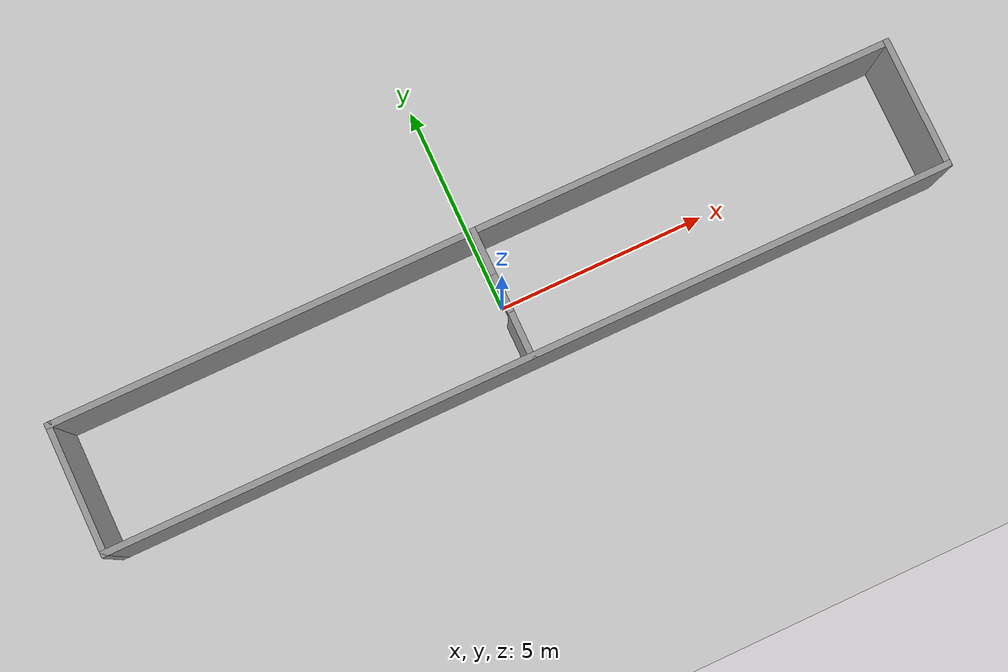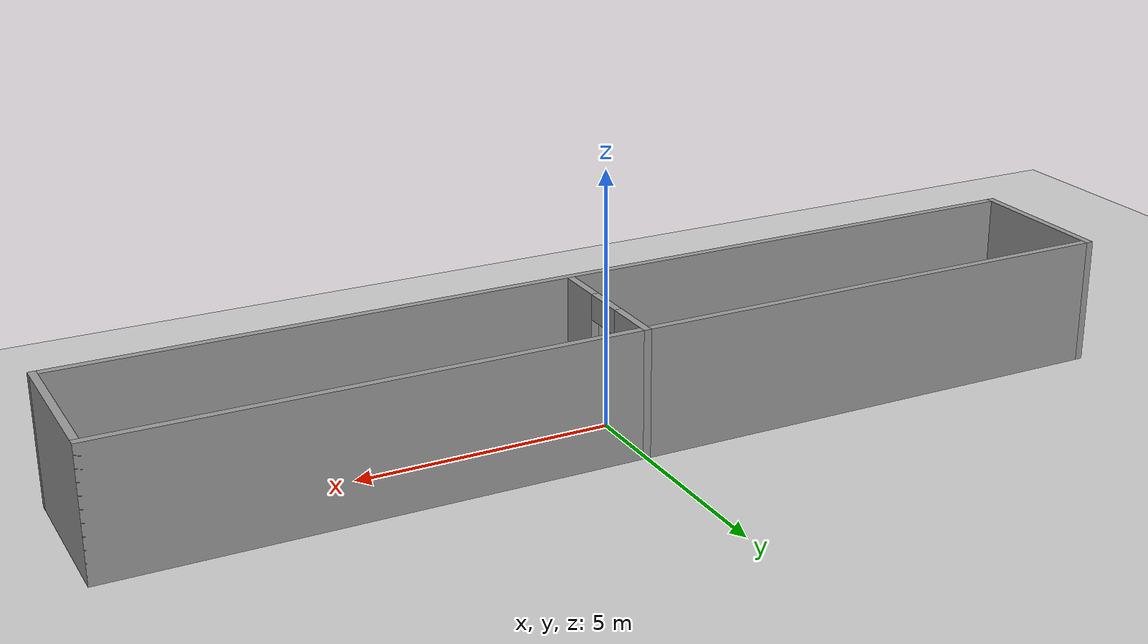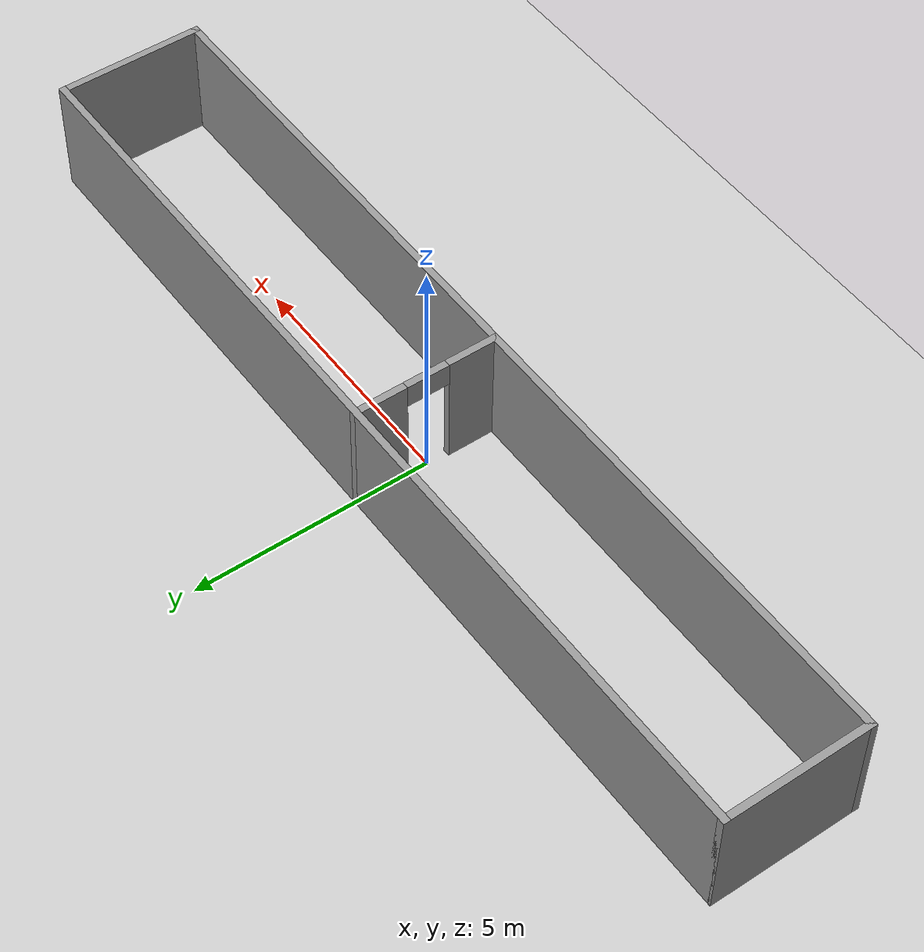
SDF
<sdf version="1.7">
 <world name="default">
  <light name="sun" type="directional">
   <pose>0 0 10 0 -0 0</pose>
   <diffuse>0.8 0.8 0.8 1</diffuse>
   <specular>0.2 0.2 0.2 1</specular>
   <attenuation>
    <range>1000</range>
    <constant>0.9</constant>
    <linear>0.01</linear>
    <quadratic>0.001</quadratic>
   </attenuation>
   <direction>-0.5 0.1 -0.9</direction>
   <spot><inner_angle>0</inner_angle><outer_angle>0</outer_angle><falloff>0</falloff></spot>
  </light>
  <model name="ground_plane">
   <static>1</static>
   <link name="link">
    <collision name="collision">
     <geometry><plane><normal>0 0 1</normal><size>100 100</size></plane></geometry>
     <surface><friction><ode><mu>100</mu><mu2>50</mu2></ode></friction></surface>
    </collision>
    <visual name="visual">
     <cast_shadows>0</cast_shadows>
     <geometry><plane><normal>0 0 1</normal><size>100 100</size></plane></geometry>
     <material>
      <script><uri>file://media/materials/scripts/gazebo.material</uri><name>Gazebo/Grey</name></script>
     </material>
    </visual>
   </link>
  </model>
  <gravity>0 0 -9.8</gravity>
  <magnetic_field>6e-06 2.3e-05 -4.2e-05</magnetic_field>
  <atmosphere type="adiabatic"/>
  <physics type="ode">
   <max_step_size>0.001</max_step_size>
   <real_time_factor>1</real_time_factor>
   <real_time_update_rate>1000</real_time_update_rate>
  </physics>
  <scene><ambient>0.4 0.4 0.4 1</ambient><background>0.7 0.7 0.7 1</background><shadows>1</shadows></scene>
  <audio><device>default</device></audio>
  <spherical_coordinates>
   <surface_model>EARTH_WGS84</surface_model>
   <latitude_deg>0</latitude_deg>
   <longitude_deg>0</longitude_deg>
   <elevation>0</elevation>
   <heading_deg>0</heading_deg>
  </spherical_coordinates>
  <model name="DoorWay">
   <link name="Wall_1">
    <collision name="Wall_1_Collision">
     <geometry><box><size>3.15 0.15 2.5</size></box></geometry>
     <pose>0 0 1.25 0 -0 0</pose>
    </collision>
    <visual name="Wall_1_Visual">
     <pose>0 0 1.25 0 -0 0</pose>
     <geometry><box><size>3.15 0.15 2.5</size></box></geometry>
     <material>
      <script><uri>file://media/materials/scripts/gazebo.material</uri><name>Gazebo/Grey</name></script>
      <ambient>1 1 1 1</ambient>
     </material>
     <meta><layer>0</layer></meta>
    </visual>
    <pose>-10 0 0 0 -0 1.5708</pose>
   </link>
   <link name="Wall_2">
    <collision name="Wall_2_Collision">
     <geometry><box><size>20.15 0.15 2.5</size></box></geometry>
     <pose>0 0 1.25 0 -0 0</pose>
    </collision>
    <visual name="Wall_2_Visual">
     <pose>0 0 1.25 0 -0 0</pose>
     <geometry><box><size>20.15 0.15 2.5</size></box></geometry>
     <material>
      <script><uri>file://media/materials/scripts/gazebo.material</uri><name>Gazebo/Grey</name></script>
      <ambient>1 1 1 1</ambient>
     </material>
     <meta><layer>0</layer></meta>
    </visual>
    <pose>0 1.5 0 0 -0 0</pose>
   </link>
   <link name="Wall_3">
    <collision name="Wall_3_Collision">
     <geometry><box><size>3.15 0.15 2.5</size></box></geometry>
     <pose>0 0 1.25 0 -0 0</pose>
    </collision>
    <visual name="Wall_3_Visual">
     <pose>0 0 1.25 0 -0 0</pose>
     <geometry><box><size>3.15 0.15 2.5</size></box></geometry>
     <material>
      <script><uri>file://media/materials/scripts/gazebo.material</uri><name>Gazebo/Grey</name></script>
      <ambient>1 1 1 1</ambient>
     </material>
     <meta><layer>0</layer></meta>
    </visual>
    <pose>10 0 0 0 -0 -1.5708</pose>
   </link>
   <link name="Wall_4">
    <collision name="Wall_4_Collision">
     <geometry><box><size>20.15 0.15 2.5</size></box></geometry>
     <pose>0 0 1.25 0 -0 0</pose>
    </collision>
    <visual name="Wall_4_Visual">
     <pose>0 0 1.25 0 -0 0</pose>
     <geometry><box><size>20.15 0.15 2.5</size></box></geometry>
     <material>
      <script><uri>file://media/materials/scripts/gazebo.material</uri><name>Gazebo/Grey</name></script>
      <ambient>1 1 1 1</ambient>
     </material>
     <meta><layer>0</layer></meta>
    </visual>
    <pose>0 -1.5 0 0 -0 3.14159</pose>
   </link>
   <link name="Wall_6">
    <pose>0 0 0 0 -0 -1.5708</pose>
    <visual name="Wall_6_Visual_0">
     <pose>-1.01321 0 1.25 0 -0 0</pose>
     <geometry><box><size>1.12359 0.15 2.5</size></box></geometry>
     <material>
      <script><uri>file://media/materials/scripts/gazebo.material</uri><name>Gazebo/Grey</name></script>
      <ambient>1 1 1 1</ambient>
     </material>
     <meta><layer>0</layer></meta>
    </visual>
    <collision name="Wall_6_Collision_0">
     <geometry><box><size>1.12359 0.15 2.5</size></box></geometry>
     <pose>-1.01321 0 1.25 0 -0 0</pose>
    </collision>
    <visual name="Wall_6_Visual_1">
     <pose>1.01179 0 1.25 0 -0 0</pose>
     <geometry><box><size>1.12641 0.15 2.5</size></box></geometry>
     <material>
      <script><uri>file://media/materials/scripts/gazebo.material</uri><name>Gazebo/Grey</name></script>
      <ambient>1 1 1 1</ambient>
     </material>
     <meta><layer>0</layer></meta>
    </visual>
    <collision name="Wall_6_Collision_1">
     <geometry><box><size>1.12641 0.15 2.5</size></box></geometry>
     <pose>1.01179 0 1.25 0 -0 0</pose>
    </collision>
    <visual name="Wall_6_Visual_2">
     <pose>-0.001411 0 2.25 0 -0 0</pose>
     <geometry><box><size>0.9 0.15 0.5</size></box></geometry>
     <material>
      <script><uri>file://media/materials/scripts/gazebo.material</uri><name>Gazebo/Grey</name></script>
      <ambient>1 1 1 1</ambient>
     </material>
     <meta><layer>0</layer></meta>
    </visual>
    <collision name="Wall_6_Collision_2">
     <geometry><box><size>0.9 0.15 0.5</size></box></geometry>
     <pose>-0.001411 0 2.25 0 -0 0</pose>
    </collision>
   </link>
   <static>1</static>
  </model>
 </world>
</sdf>
